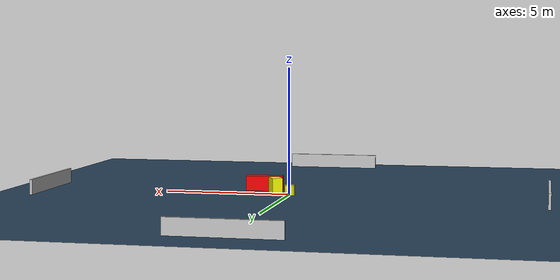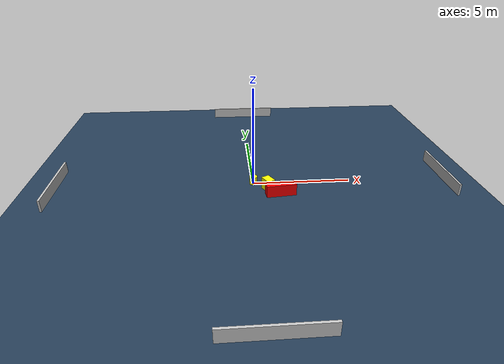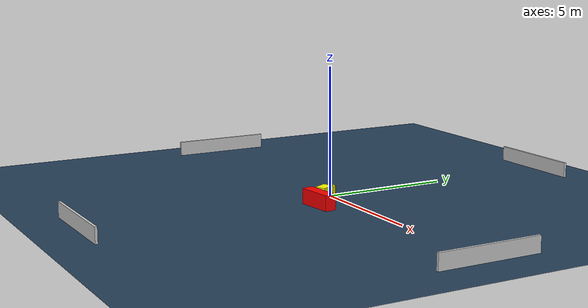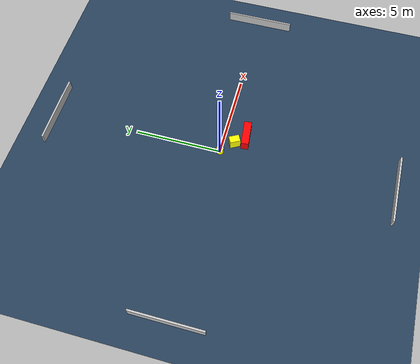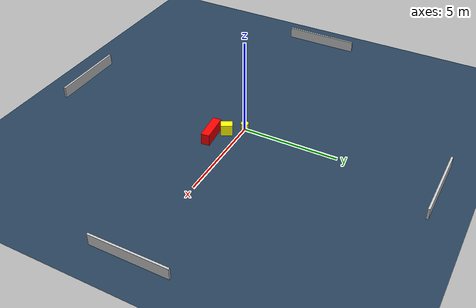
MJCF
<?xml version="1.0" ?>
<mujoco model="generated_environment">
  <option timestep="0.01" integrator="RK4" cone="elliptic"/>
  <default>
    <geom density="1"/>
  </default>
  <asset>
    <texture builtin="gradient" height="3072" name="skybox" rgb1="0.3 0.5 0.7" rgb2="0 0 0" type="skybox" width="512"/>
    <texture builtin="checker" height="300" name="groundplane" rgb1="0.2 0.3 0.4" rgb2="0.1 0.2 0.3" type="2d" width="300"/>
    <material name="groundplane" reflectance="0.2" texrepeat="5 5" texture="groundplane"/>
  </asset>
  <worldbody>
    <light dir="0 0 -1" directional="true" pos="0 0 1.5"/>
    <geom condim="3" friction="0.5 0.005 0.001" material="groundplane" name="floor" pos="0 0 0" size="0 0 0.05" type="plane"/>
    <body name="walls">
      <geom name="wall_1" condim="4" pos="-10.0 0.0 0.3" rgba="0.800000011920929 0.800000011920929 0.800000011920929 1.0" size="0.05 2.0 0.3" type="box"/>
      <geom name="wall_2" condim="4" pos="10.0 0.0 0.3" rgba="0.800000011920929 0.800000011920929 0.800000011920929 1.0" size="0.05 2.0 0.3" type="box"/>
      <geom name="wall_3" condim="4" pos="0.0 -10.0 0.3" rgba="0.800000011920929 0.800000011920929 0.800000011920929 1.0" size="2.0 0.05 0.3" type="box"/>
      <geom name="wall_4" condim="4" pos="0.0 10.0 0.3" rgba="0.800000011920929 0.800000011920929 0.800000011920929 1.0" size="2.0 0.05 0.3" type="box"/>
    </body>
    <body name="robot">
      <joint name="joint_x" type="slide" pos="0 0 0" axis="1 0 0"/>
      <joint name="joint_y" type="slide" pos="0 0 0" axis="0 1 0"/>
      <geom name="robot" type="cylinder" pos="0.0 0.0 0.2" size="0.2 0.2 0.0" mass="5.0" friction="1.0 0.005 0.0001" condim="4" rgba="1.0 1.0 0.0 1.0"/>
    </body>
    <body name="obstacle_1_movable">
      <geom name="obstacle_1_movable" condim="4" pos="0.7048468852617763 -0.6642341560342797 0.3" euler="0 0 118.4121140096743" friction="0.0 0.005 0.001" rgba="1.0 1.0 0.0 1.0" size="0.2996028788661095 0.20899479468852988 0.3" type="box" mass="0.1"/>
      <joint type="free"/>
    </body>
    <body name="obstacle_2_static">
      <geom name="obstacle_2_static" condim="4" pos="1.2785400621053942 -1.2192598579715654 0.3" euler="0 0 95.89526276127746" friction="0.0 0.005 0.001" rgba="1.0 0.0 0.0 1.0" size="0.22000587840391564 0.7423263719393631 0.3" type="box"/>
    </body>
  </worldbody>
  <actuator>
    <motor name="actuator_x" joint="joint_x" gear="1" ctrlrange="-1 1"/>
    <motor name="actuator_y" joint="joint_y" gear="1" ctrlrange="-1 1"/>
  </actuator>
</mujoco>
